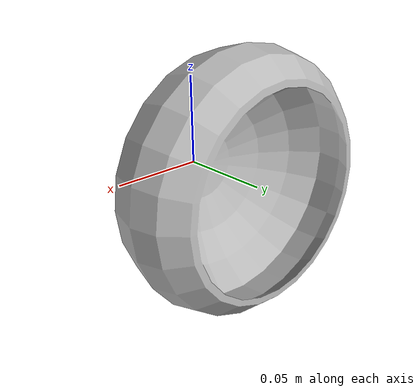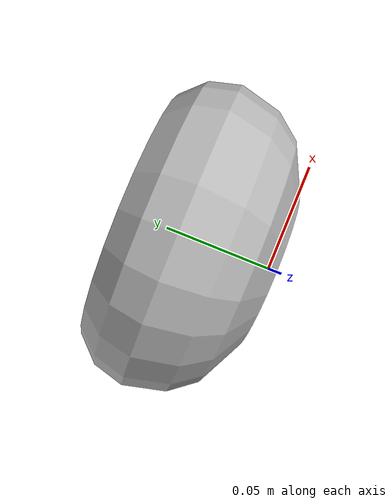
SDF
<?xml version="1.0" ?>
<sdf version="1.4">
  <model name="shelf2_bowl2_1a">
    <link name="body">
      <pose>0 0 0 0 0 0</pose>
      <inertial>
        <pose>  -0.000500   0.032298  -0.000000 0 0 0</pose>
        <mass>0.5</mass>
        <inertia>
          <ixx>0.01</ixx>
          <ixy>0</ixy>
          <ixz>0</ixz>
          <iyy>0.01</iyy>
          <iyz>0</iyz>
          <izz>0.01</izz>
        </inertia>
      </inertial>
      <collision name="collision">
        <geometry>
          <mesh>
            <uri>model://bookshelf/shelf2_items/bowl2_1a/bowl2_1a.dae</uri>
          </mesh>
        </geometry>
      </collision>
      <visual name="visual">
        <geometry>
          <mesh>
            <uri>model://bookshelf/shelf2_items/bowl2_1a/bowl2_1a.dae</uri>
          </mesh>
        </geometry>
      </visual>
    </link>
  </model>
</sdf>
